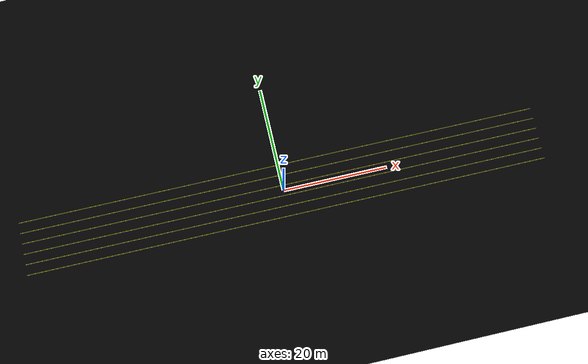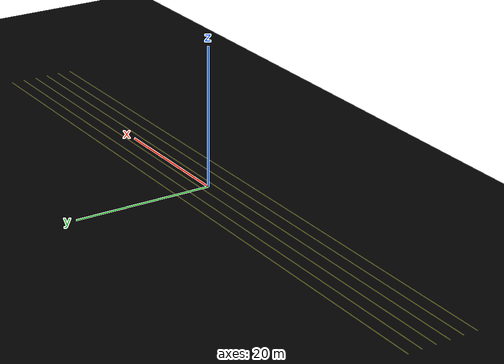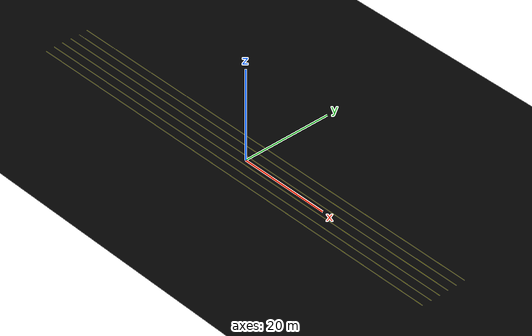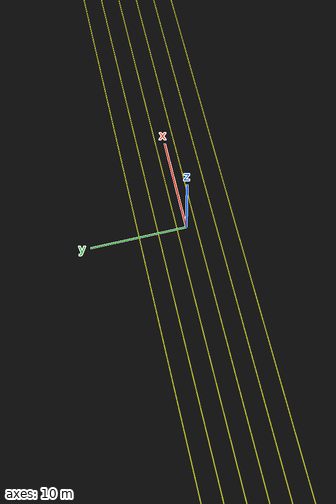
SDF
<?xml version="1.0" ?>
<sdf version="1.5">
  <world name="empty">
    <physics name="1ms" type="ignored">
      <max_step_size>0.001</max_step_size>
      <real_time_factor>1.0</real_time_factor>
    </physics>
    <plugin
      filename="ignition-gazebo-physics-system"
      name="ignition::gazebo::systems::Physics">
    </plugin>
    <plugin
      filename="ignition-gazebo-user-commands-system"
      name="ignition::gazebo::systems::UserCommands">
    </plugin>
    <plugin
      filename="ignition-gazebo-scene-broadcaster-system"
      name="ignition::gazebo::systems::SceneBroadcaster">
    </plugin>
    <plugin
      filename="ignition-gazebo-contact-system"
      name="ignition::gazebo::systems::Contact">
    </plugin>
    <plugin
      filename="libignition-gazebo-sensors-system.so"
      name="ignition::gazebo::systems::Sensors">
      <render_engine>ogre2</render_engine>
    </plugin>
    <plugin filename="libignition-gazebo-imu-system.so"
      name="ignition::gazebo::systems::Imu">
    </plugin>

    <light type="directional" name="sun">
      <cast_shadows>true</cast_shadows>
      <pose>0 0 10 0 0 0</pose>
      <diffuse>0.8 0.8 0.8 1</diffuse>
      <specular>0.2 0.2 0.2 1</specular>
      <attenuation>
        <range>1000</range>
        <constant>0.9</constant>
        <linear>0.01</linear>
        <quadratic>0.001</quadratic>
      </attenuation>
      <direction>-0.5 0.1 -0.9</direction>
    </light>

    <model name="ground_plane">
      <static>true</static>
      <link name="link">
        <collision name="collision">
          <geometry>
            <plane>
              <normal>0 0 1</normal>
              <size>500 500</size>
            </plane>
          </geometry>
        </collision>
        <visual name="visual">
          <geometry>
            <plane>
              <normal>0 0 1</normal>
              <size>500 500</size>
            </plane>
          </geometry>
          <material>
            <ambient>0.0 0.0 0.0 1</ambient>
            <diffuse>0.0 0.0 0.0 1</diffuse>
            <specular>0.0 0.0 0.0 1</specular>
          </material>
        </visual>
      </link>
    </model>
        <!-- Add lane markings using visuals -->
    <!-- Center line 1 -->
    <model name="center_line_1">
      <static>true</static>
      <pose>0 -1 0 0 0 0</pose>
      <link name="line_link">
        <visual name="line_visual">
          <geometry>
            <box>
              <size>100 0.1 0.002</size>
            </box>
          </geometry>
          <material>
            <ambient>1 1 0 1</ambient> <!-- yellow line -->
            <diffuse>1 1 0 1</diffuse>
          </material>
        </visual>
      </link>
    </model>

    <!-- Center line 2 -->
    <model name="center_line_2">
      <static>true</static>
      <pose>0 1 0 0 0 0</pose>
      <link name="line_link">
        <visual name="line_visual">
          <geometry>
            <box>
              <size>100 0.1 0.002</size>
            </box>
          </geometry>
          <material>
            <ambient>1 1 0 1</ambient> <!-- yellow line -->
            <diffuse>1 1 0 1</diffuse>
          </material>
        </visual>
      </link>
    </model>

    <!-- Center line 3 -->
    <model name="center_line_3">
      <static>true</static>
      <pose>0 3 0 0 0 0</pose>
      <link name="line_link">
        <visual name="line_visual">
          <geometry>
            <box>
              <size>100 0.1 0.002</size>
            </box>
          </geometry>
          <material>
            <ambient>1 1 0 1</ambient> <!-- yellow line -->
            <diffuse>1 1 0 1</diffuse>
          </material>
        </visual>
      </link>
    </model>

    <!-- Center line 4 -->
    <model name="center_line_4">
      <static>true</static>
      <pose>0 -3 0 0 0 0</pose>
      <link name="line_link">
        <visual name="line_visual">
          <geometry>
            <box>
              <size>100 0.1 0.002</size>
            </box>
          </geometry>
          <material>
            <ambient>1 1 0 1</ambient> <!-- yellow line -->
            <diffuse>1 1 0 1</diffuse>
          </material>
        </visual>
      </link>
    </model>

    <!-- Center line 5 -->
    <model name="center_line_5">
      <static>true</static>
      <pose>0 -5 0 0 0 0</pose>
      <link name="line_link">
        <visual name="line_visual">
          <geometry>
            <box>
              <size>100 0.1 0.002</size>
            </box>
          </geometry>
          <material>
            <ambient>1 1 0 1</ambient> <!-- yellow line -->
            <diffuse>1 1 0 1</diffuse>
          </material>
        </visual>
      </link>
    </model>
    <!-- Center line 6 -->
    <model name="center_line_6">
      <static>true</static>
      <pose>0 5 0 0 0 0</pose>
      <link name="line_link">
        <visual name="line_visual">
          <geometry>
            <box>
              <size>100 0.1 0.002</size>
            </box>
          </geometry>
          <material>
            <ambient>1 1 0 1</ambient> <!-- yellow line -->
            <diffuse>1 1 0 1</diffuse>
          </material>
        </visual>
      </link>
    </model>
  </world>
</sdf>
